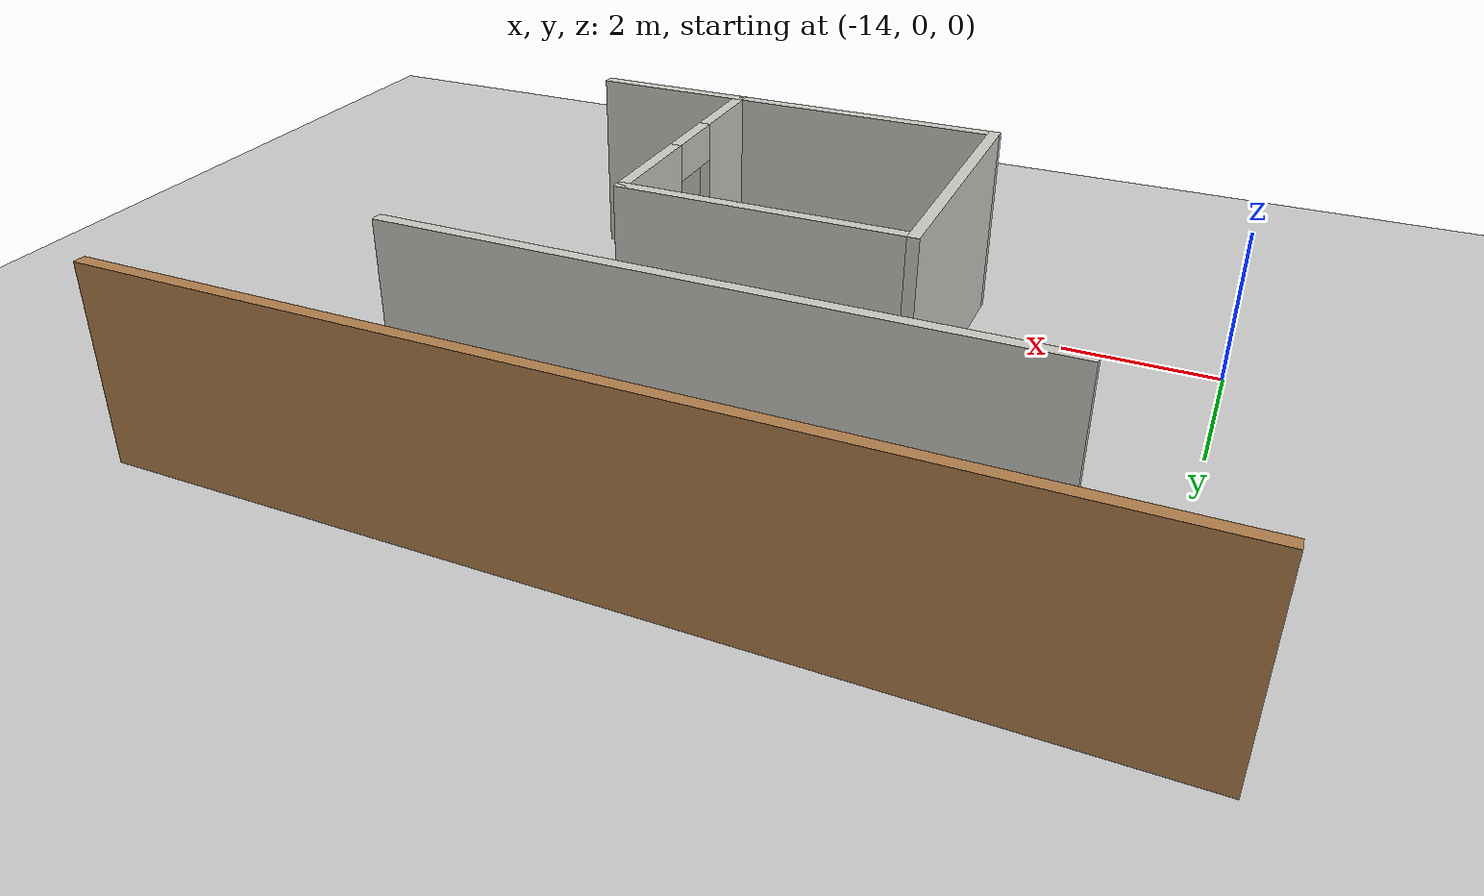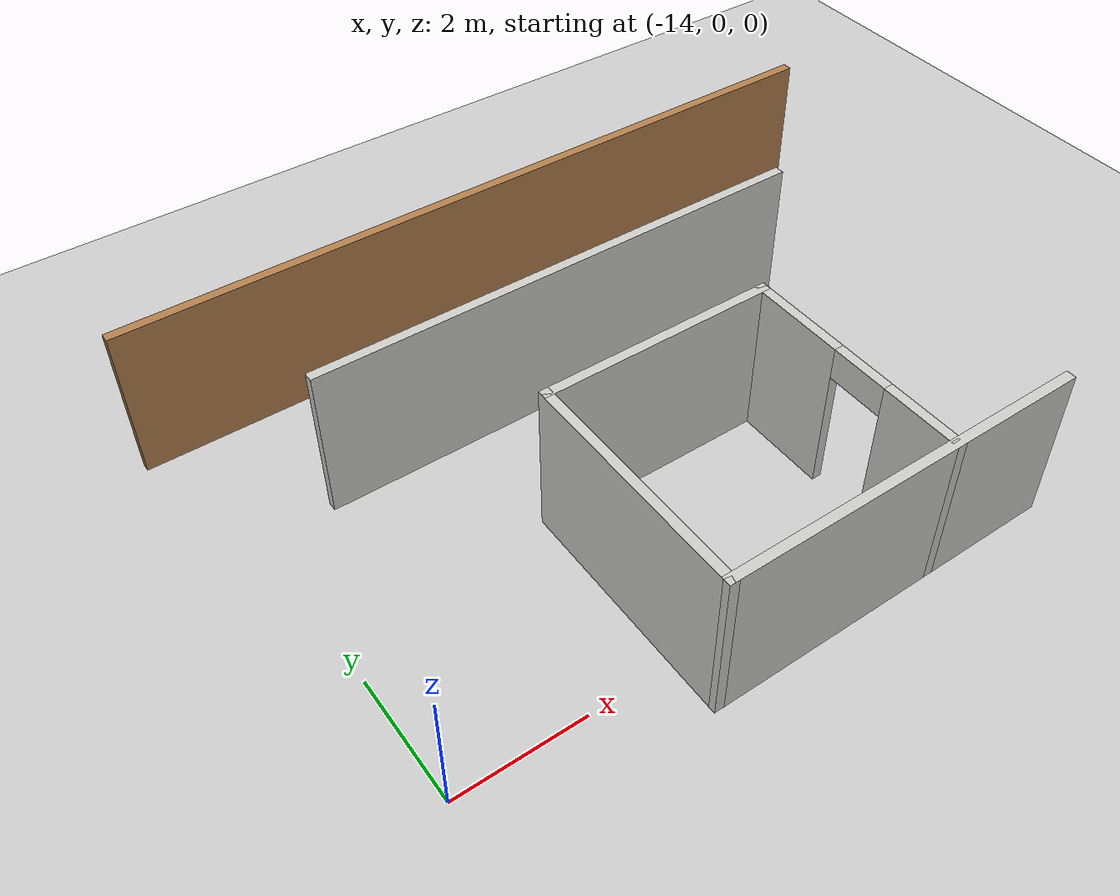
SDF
<sdf version="1.6">
 <world name="default">
  <model name="ground_plane">
   <static>1</static>
   <link name="link">
    <collision name="collision">
     <geometry><plane><normal>0 0 1</normal><size>100 100</size></plane></geometry>
     <surface><friction><ode><mu>100</mu><mu2>50</mu2></ode></friction></surface>
    </collision>
    <visual name="visual">
     <cast_shadows>0</cast_shadows>
     <geometry><plane><normal>0 0 1</normal><size>100 100</size></plane></geometry>
     <material>
      <script><uri>file://media/materials/scripts/gazebo.material</uri><name>Gazebo/Grey</name></script>
     </material>
    </visual>
   </link>
  </model>
  <model name="Building">
   <pose>5.7189 -2.01548 0 0 -0 0</pose>
   <link name="Wall_58">
    <collision name="Wall_58_Collision">
     <geometry><box><size>12 0.15 2.5</size></box></geometry>
     <pose>0 0 1.25 0 -0 0</pose>
    </collision>
    <visual name="Wall_58_Visual">
     <pose>0 0 1.25 0 -0 0</pose>
     <geometry><box><size>12 0.15 2.5</size></box></geometry>
     <material>
      <script><uri>file://media/materials/scripts/gazebo.material</uri><name>Gazebo/Wood</name></script>
      <ambient>1 1 1 1</ambient>
     </material>
     <meta><layer>0</layer></meta>
    </visual>
    <pose>-14.5523 9.057 0 0 -0 0</pose>
   </link>
   <link name="Wall_63">
    <collision name="Wall_63_Collision">
     <geometry><box><size>8 0.15 2.5</size></box></geometry>
     <pose>0 0 1.25 0 -0 0</pose>
    </collision>
    <visual name="Wall_63_Visual">
     <pose>0 0 1.25 0 -0 0</pose>
     <geometry><box><size>8 0.15 2.5</size></box></geometry>
     <material>
      <script><uri>file://media/materials/scripts/gazebo.material</uri><name>Gazebo/CeilingTiled</name></script>
      <ambient>1 1 1 1</ambient>
     </material>
     <meta><layer>0</layer></meta>
    </visual>
    <pose>-14.7051 6.82609 0 0 -0 0</pose>
   </link>
   <link name="Wall_65">
    <collision name="Wall_65_Collision">
     <geometry><box><size>5.75 0.15 2.5</size></box></geometry>
     <pose>0 0 1.25 0 -0 0</pose>
    </collision>
    <visual name="Wall_65_Visual">
     <pose>0 0 1.25 0 -0 0</pose>
     <geometry><box><size>5.75 0.15 2.5</size></box></geometry>
     <material>
      <script><uri>file://media/materials/scripts/gazebo.material</uri><name>Gazebo/CeilingTiled</name></script>
      <ambient>1 1 1 1</ambient>
     </material>
     <meta><layer>0</layer></meta>
    </visual>
    <pose>-13.5797 1.2261 0 0 -0 3.14159</pose>
   </link>
   <link name="Wall_66">
    <collision name="Wall_66_Collision">
     <geometry><box><size>3.75 0.15 2.5</size></box></geometry>
     <pose>0 0 1.25 0 -0 0</pose>
    </collision>
    <visual name="Wall_66_Visual">
     <pose>0 0 1.25 0 -0 0</pose>
     <geometry><box><size>3.75 0.15 2.5</size></box></geometry>
     <material>
      <script><uri>file://media/materials/scripts/gazebo.material</uri><name>Gazebo/CeilingTiled</name></script>
      <ambient>0.435294 0.796078 0.67451 1</ambient>
     </material>
     <meta><layer>0</layer></meta>
    </visual>
    <pose>-16.3799 3.02609 0 0 -0 1.57091</pose>
   </link>
   <link name="Wall_67">
    <collision name="Wall_67_Collision">
     <geometry><box><size>3.75 0.15 2.5</size></box></geometry>
     <pose>0 0 1.25 0 -0 0</pose>
    </collision>
    <visual name="Wall_67_Visual">
     <pose>0 0 1.25 0 -0 0</pose>
     <geometry><box><size>3.75 0.15 2.5</size></box></geometry>
     <material>
      <script><uri>file://media/materials/scripts/gazebo.material</uri><name>Gazebo/CeilingTiled</name></script>
      <ambient>1 1 1 1</ambient>
     </material>
     <meta><layer>0</layer></meta>
    </visual>
    <pose>-14.5799 4.82609 0 0 -0 5e-06</pose>
   </link>
   <link name="Wall_68">
    <pose>-12.7797 3.0261 0 0 0 -1.5708</pose>
    <visual name="Wall_68_Visual_0">
     <pose>-1.08299 0 1.25 0 -0 0</pose>
     <geometry><box><size>1.58401 0.15 2.5</size></box></geometry>
     <material>
      <script><uri>file://media/materials/scripts/gazebo.material</uri><name>Gazebo/CeilingTiled</name></script>
      <ambient>1 1 1 1</ambient>
     </material>
     <meta><layer>0</layer></meta>
    </visual>
    <collision name="Wall_68_Collision_0">
     <geometry><box><size>1.58401 0.15 2.5</size></box></geometry>
     <pose>-1.08299 0 1.25 0 -0 0</pose>
    </collision>
    <visual name="Wall_68_Visual_1">
     <pose>1.24201 0 1.25 0 -0 0</pose>
     <geometry><box><size>1.26599 0.15 2.5</size></box></geometry>
     <material>
      <script><uri>file://media/materials/scripts/gazebo.material</uri><name>Gazebo/CeilingTiled</name></script>
      <ambient>1 1 1 1</ambient>
     </material>
     <meta><layer>0</layer></meta>
    </visual>
    <collision name="Wall_68_Collision_1">
     <geometry><box><size>1.26599 0.15 2.5</size></box></geometry>
     <pose>1.24201 0 1.25 0 -0 0</pose>
    </collision>
    <visual name="Wall_68_Visual_2">
     <pose>0.159014 0 2.25 0 -0 0</pose>
     <geometry><box><size>0.9 0.15 0.5</size></box></geometry>
     <material>
      <script><uri>file://media/materials/scripts/gazebo.material</uri><name>Gazebo/CeilingTiled</name></script>
      <ambient>1 1 1 1</ambient>
     </material>
     <meta><layer>0</layer></meta>
    </visual>
    <collision name="Wall_68_Collision_2">
     <geometry><box><size>0.9 0.15 0.5</size></box></geometry>
     <pose>0.159014 0 2.25 0 -0 0</pose>
    </collision>
   </link>
   <static>1</static>
  </model>
 </world>
</sdf>
